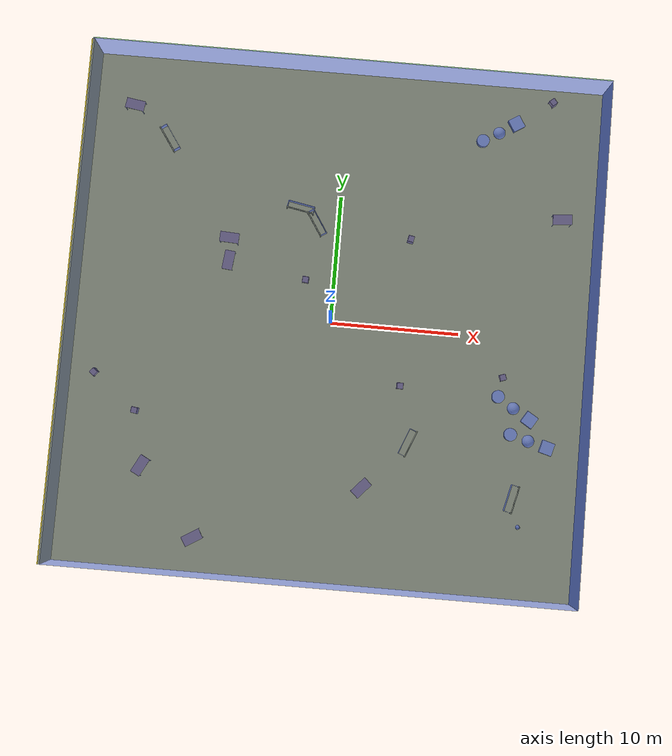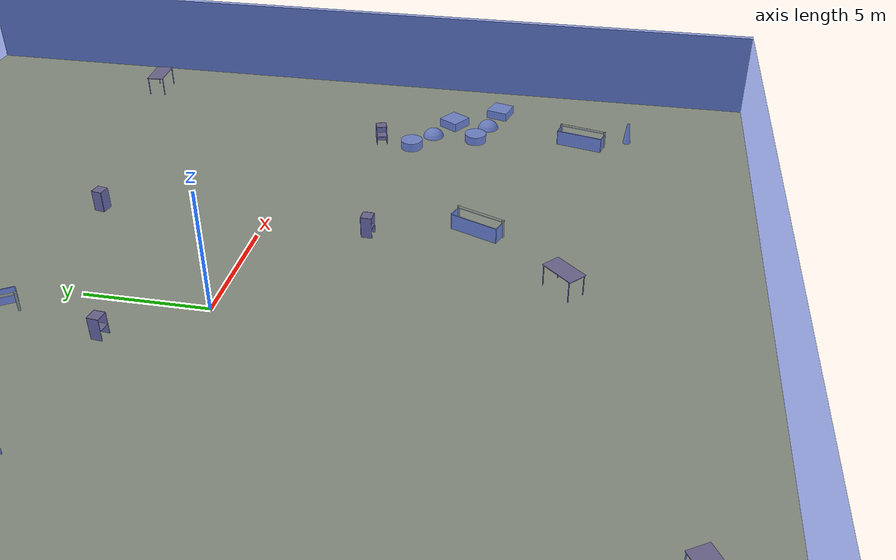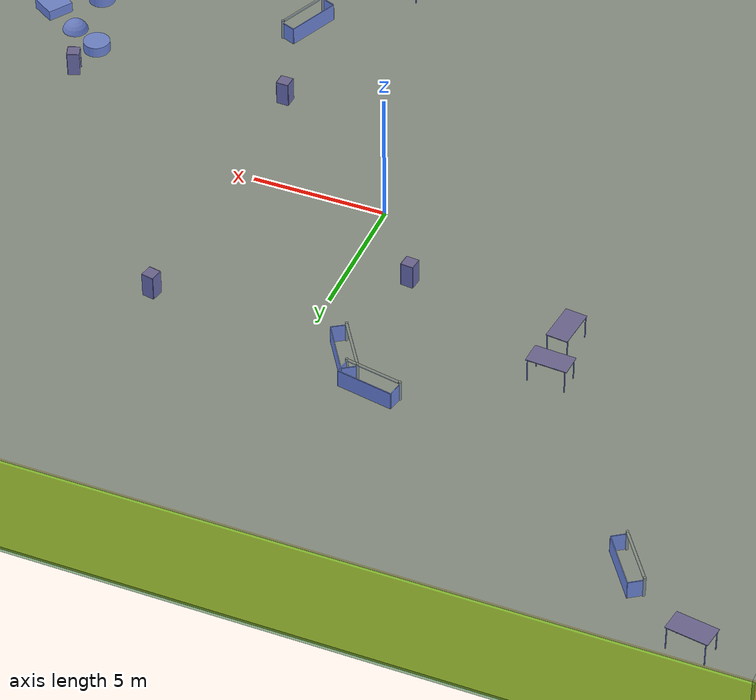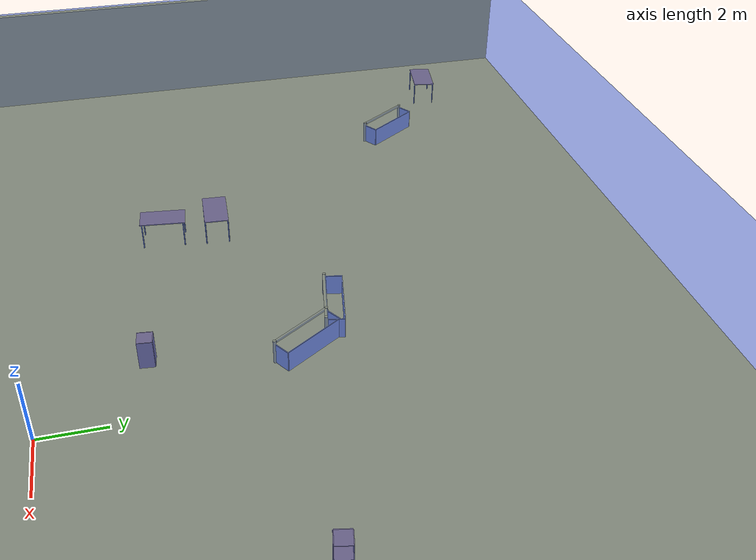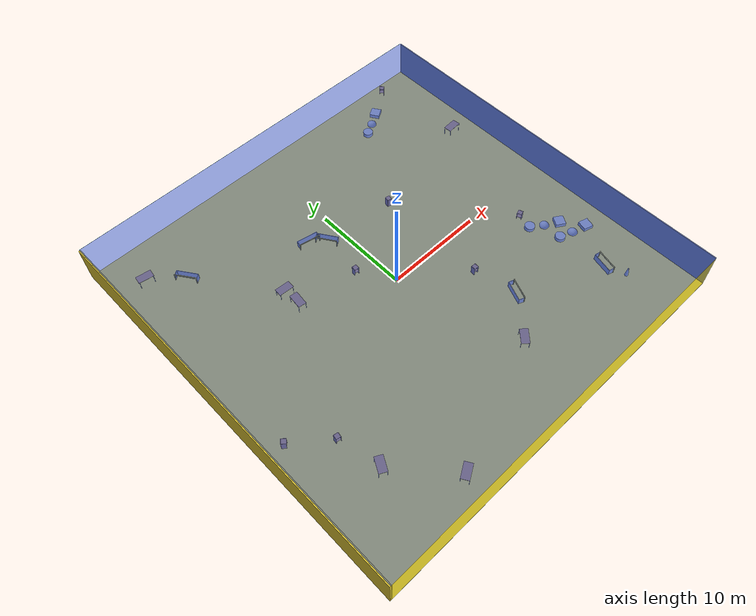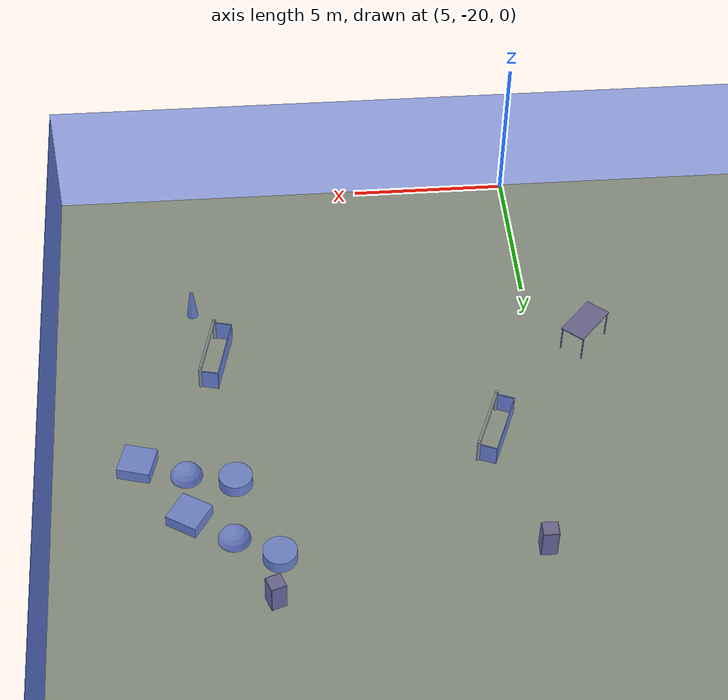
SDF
<sdf version="1.4">
 <world name="default">
  <physics type="ode">
   <max_step_size>0.001</max_step_size>
   <real_time_factor>1</real_time_factor>
   <real_time_update_rate>1000</real_time_update_rate>
   <gravity>0 0 -9.8</gravity>
  </physics>
  <scene><ambient>0.4 0.4 0.4 1</ambient><background>0.7 0.7 0.7 1</background><shadows>1</shadows></scene>
  <model name="Surrounding">
   <static>1</static>
   <link name="Ceiling">
    <collision name="Ceiling_Collision"><geometry><box><size>40 40 0.1</size></box></geometry></collision>
    <visual name="Ceiling_Visual">
     <geometry><box><size>40 40 0.1</size></box></geometry>
     <material>
      <script><uri>file://media/materials/scripts/gazebo.material</uri><name>Gazebo/BlueTransparent</name></script>
     </material>
    </visual>
    <pose>0 0 4.05 0 0 0</pose>
   </link>
   <link name="Wall_South">
    <collision name="Wall_South_Collision">
     <geometry><box><size>40 0 4</size></box></geometry>
     <pose>0 0 2 0 -0 0</pose>
    </collision>
    <visual name="Wall_South_Visual">
     <pose>0 0 2 0 -0 0</pose>
     <geometry><box><size>40 0 4</size></box></geometry>
     <material>
      <script>
       <uri>file://media/materials/scripts/gazebo.material</uri>
       <name>Gazebo/YellowTransparent</name>
      </script>
     </material>
    </visual>
    <velocity_decay><linear>0</linear><angular>0</angular></velocity_decay>
    <pose>0 -20 0 0 -0 0</pose>
   </link>
   <link name="Wall_East">
    <collision name="Wall_21_Collision">
     <geometry><box><size>40 0 4</size></box></geometry>
     <pose>0 0 2 0 -0 0</pose>
    </collision>
    <visual name="Wall_21_Visual">
     <pose>0 0 2 0 -0 0</pose>
     <geometry><box><size>40 0 4</size></box></geometry>
     <material>
      <script><uri>file://media/materials/scripts/gazebo.material</uri><name>Gazebo/GreyGradientSky</name></script>
     </material>
    </visual>
    <velocity_decay><linear>0</linear><angular>0</angular></velocity_decay>
    <pose>20 0 0 0 -0 1.5708</pose>
   </link>
   <link name="Wall_North">
    <collision name="Wall_22_Collision">
     <geometry><box><size>40 0.2 4</size></box></geometry>
     <pose>0 0 2 0 -0 0</pose>
    </collision>
    <visual name="Wall_22_Visual">
     <pose>0 0 2 0 -0 0</pose>
     <geometry><box><size>40 0.2 4</size></box></geometry>
     <material>
      <script><uri>file://media/materials/scripts/gazebo.material</uri><name>Gazebo/GreenTransparent</name></script>
     </material>
    </visual>
    <velocity_decay><linear>0</linear><angular>0</angular></velocity_decay>
    <pose>0 20 0 0 -0 0</pose>
   </link>
   <link name="Wall_West">
    <collision name="Wall_23_Collision">
     <geometry><box><size>40 0.2 4</size></box></geometry>
     <pose>0 0 2 0 -0 0</pose>
    </collision>
    <visual name="Wall_23_Visual">
     <pose>0 0 2 0 -0 0</pose>
     <geometry><box><size>40 0.2 4</size></box></geometry>
     <material>
      <script><uri>file://media/materials/scripts/gazebo.material</uri><name>Gazebo/ZincYellow</name></script>
     </material>
    </visual>
    <velocity_decay><linear>0</linear><angular>0</angular></velocity_decay>
    <pose>-20 0 0 0 0 -1.5708</pose>
   </link>
   <link name="Ground_link">
    <collision name="collision">
     <pose>0 0 .05 0 -0 0</pose>
     <geometry><box><size>40 40 0.1</size></box></geometry>
    </collision>
    <visual name="visual">
     <pose>0 0 .05 0 -0 0</pose>
     <geometry><box><size>40 40 0.1</size></box></geometry>
     <material>
      <script><uri>file://media/materials/scripts/gazebo.material</uri><name>Gazebo/ZincYellow</name></script>
     </material>
    </visual>
   </link>
   <static>1</static>
  </model>
  <spherical_coordinates>
   <surface_model>EARTH_WGS84</surface_model>
   <latitude_deg>0</latitude_deg>
   <longitude_deg>0</longitude_deg>
   <elevation>0</elevation>
   <heading_deg>0</heading_deg>
  </spherical_coordinates>
  <light name="lightball_0" type="diffuse">
   <diffuse>0.8 0.8 0.8 1</diffuse>
   <specular>0.2 0.2 0.2 1</specular>
   <attenuation>
    <range>100</range>
    <constant>0.7</constant>
    <linear>0.01</linear>
    <quadratic>0.001</quadratic>
   </attenuation>
   <direction>-0.5 0.1 -0.9</direction>
   <pose>-18.2187324055 -14.1883053259 2.19848019244 0 0 0</pose>
  </light>
  <light name="lightball_1" type="diffuse">
   <diffuse>0.8 0.8 0.8 1</diffuse>
   <specular>0.2 0.2 0.2 1</specular>
   <attenuation>
    <range>100</range>
    <constant>0.7</constant>
    <linear>0.01</linear>
    <quadratic>0.001</quadratic>
   </attenuation>
   <direction>-0.5 0.1 -0.9</direction>
   <pose>13.067052426 -15.6760987794 3.40087922286 0 0 0</pose>
  </light>
  <light name="lightball_2" type="diffuse">
   <diffuse>0.8 0.8 0.8 1</diffuse>
   <specular>0.2 0.2 0.2 1</specular>
   <attenuation>
    <range>100</range>
    <constant>0.7</constant>
    <linear>0.01</linear>
    <quadratic>0.001</quadratic>
   </attenuation>
   <direction>-0.5 0.1 -0.9</direction>
   <pose>2.49005244261 4.43291341487 3.54053064861 0 0 0</pose>
  </light>
  <light name="lightball_3" type="diffuse">
   <diffuse>0.8 0.8 0.8 1</diffuse>
   <specular>0.2 0.2 0.2 1</specular>
   <attenuation>
    <range>100</range>
    <constant>0.7</constant>
    <linear>0.01</linear>
    <quadratic>0.001</quadratic>
   </attenuation>
   <direction>-0.5 0.1 -0.9</direction>
   <pose>-8.56260880748 17.2722989481 1.78696364063 0 0 0</pose>
  </light>
  <light name="lightball_4" type="diffuse">
   <diffuse>0.8 0.8 0.8 1</diffuse>
   <specular>0.2 0.2 0.2 1</specular>
   <attenuation>
    <range>100</range>
    <constant>0.7</constant>
    <linear>0.01</linear>
    <quadratic>0.001</quadratic>
   </attenuation>
   <direction>-0.5 0.1 -0.9</direction>
   <pose>-12.0419447868 -10.3133031159 1.56931018195 0 0 0</pose>
  </light>
  <light name="lightball_5" type="diffuse">
   <diffuse>0.8 0.8 0.8 1</diffuse>
   <specular>0.2 0.2 0.2 1</specular>
   <attenuation>
    <range>100</range>
    <constant>0.7</constant>
    <linear>0.01</linear>
    <quadratic>0.001</quadratic>
   </attenuation>
   <direction>-0.5 0.1 -0.9</direction>
   <pose>-14.3829876978 -11.7012857538 2.06431650712 0 0 0</pose>
  </light>
  <light name="lightball_6" type="diffuse">
   <diffuse>0.8 0.8 0.8 1</diffuse>
   <specular>0.2 0.2 0.2 1</specular>
   <attenuation>
    <range>100</range>
    <constant>0.7</constant>
    <linear>0.01</linear>
    <quadratic>0.001</quadratic>
   </attenuation>
   <direction>-0.5 0.1 -0.9</direction>
   <pose>-11.6144348208 13.3204477751 2.90184375396 0 0 0</pose>
  </light>
  <light name="lightball_7" type="diffuse">
   <diffuse>0.8 0.8 0.8 1</diffuse>
   <specular>0.2 0.2 0.2 1</specular>
   <attenuation>
    <range>100</range>
    <constant>0.7</constant>
    <linear>0.01</linear>
    <quadratic>0.001</quadratic>
   </attenuation>
   <direction>-0.5 0.1 -0.9</direction>
   <pose>19.2653947365 -7.06757901209 3.7042257946 0 0 0</pose>
  </light>
  <light name="lightball_8" type="diffuse">
   <diffuse>0.8 0.8 0.8 1</diffuse>
   <specular>0.2 0.2 0.2 1</specular>
   <attenuation>
    <range>100</range>
    <constant>0.7</constant>
    <linear>0.01</linear>
    <quadratic>0.001</quadratic>
   </attenuation>
   <direction>-0.5 0.1 -0.9</direction>
   <pose>-10.2025489775 -19.147059657 0.80627026421 0 0 0</pose>
  </light>
  <light name="lightball_9" type="diffuse">
   <diffuse>0.8 0.8 0.8 1</diffuse>
   <specular>0.2 0.2 0.2 1</specular>
   <attenuation>
    <range>100</range>
    <constant>0.7</constant>
    <linear>0.01</linear>
    <quadratic>0.001</quadratic>
   </attenuation>
   <direction>-0.5 0.1 -0.9</direction>
   <pose>13.4095807646 -7.7702619226 2.8798574068 0 0 0</pose>
  </light>
  <include><uri>model://cabinet</uri><pose>-17.9387854763 -5.37940409232 0 0 0 2.43015473665</pose></include>
  <include><uri>model://table</uri><pose>-16.7956783695 15.8620118166 0 0 0 2.98482746125</pose></include>
  <include><uri>model://table</uri><pose>-13.6382720886 -12.228282124 0 0 0 1.080141874</pose></include>
  <include><uri>model://cabinet</uri><pose>-14.5348295386 -8.05842138313 0 0 0 1.42404062318</pose></include>
  <include>
   <uri>model://robocup_3Dsim_goal</uri>
   <pose>-14.0952253534 13.3829619844 0 0 0 0.602132973251</pose>
  </include>
  <include><uri>model://table</uri><pose>-9.16307615401 -17.3478945569 0 0 0 0.544363374708</pose></include>
  <include><uri>model://table</uri><pose>-8.34081035858 4.17976838813 0 0 0 1.46106382046</pose></include>
  <include><uri>model://table</uri><pose>-8.44026823942 5.95511805541 0 0 0 3.08376808436</pose></include>
  <include><uri>model://cabinet</uri><pose>-2.24749616452 3.16673959972 0 0 0 1.47479639916</pose></include>
  <include>
   <uri>model://robocup_3Dsim_goal</uri>
   <pose>-1.97451885518 7.61943293144 0 0 0 0.57543403769</pose>
  </include>
  <include>
   <uri>model://robocup_3Dsim_goal</uri>
   <pose>-3.1518021802 8.59774434127 0 0 0 1.3856248055</pose>
  </include>
  <include><uri>model://table</uri><pose>3.40670301735 -12.4971388777 0 0 0 0.83322048748</pose></include>
  <include>
   <uri>model://robocup_3Dsim_goal</uri>
   <pose>6.95027724583 -8.84667165848 0 0 0 2.75883654551</pose>
  </include>
  <include><uri>model://cabinet</uri><pose>5.75833313687 -4.44968690483 0 0 0 1.54332627266</pose></include>
  <include><uri>model://cabinet</uri><pose>5.7076098191 7.05165934137 0 0 0 2.94849275889</pose></include>
  <include><uri>model://cabinet</uri><pose>13.6196734537 -3.13261127521 0 0 0 0.348612816261</pose></include>
  <include>
   <uri>model://textured_shapes</uri>
   <pose>12.0463590928 16.2322481633 0 0 0 2.12638818712</pose>
  </include>
  <include>
   <uri>model://construction_cone</uri>
   <pose>15.689057444 -14.4965702473 0 0 0 0.91185090649</pose>
  </include>
  <include>
   <uri>model://robocup_3Dsim_goal</uri>
   <pose>15.2611361149 -12.4253416622 0 0 0 2.90324784018</pose>
  </include>
  <include>
   <uri>model://textured_shapes</uri>
   <pose>16.0271970145 -7.84907180488 0 0 0 1.30209447237</pose>
  </include>
  <include>
   <uri>model://textured_shapes</uri>
   <pose>14.7060419884 -5.40904839068 0 0 0 1.01257246821</pose>
  </include>
  <include><uri>model://cabinet</uri><pose>16.0187089378 18.8481755398 0 0 0 0.685444131139</pose></include>
  <include><uri>model://table</uri><pose>17.3643058953 9.55834864676 0 0 0 0.0673594812689</pose></include>
 </world>
</sdf>

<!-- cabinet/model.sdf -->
<sdf version="1.5">
  <model name="cabinet">
    <static>true</static>
    <link name="cabinet_bottom_plate">
      <inertial>
        <pose>0 0 -1 0 0 0</pose>
        <inertia>
          <ixx>2.050000</ixx>
          <ixy>0</ixy>
          <ixz>0</ixz>
          <iyy>2.050000</iyy>
          <iyz>0</iyz>
          <izz>2.050000</izz>
        </inertia>
        <mass>25.000000</mass>
      </inertial>
      <collision name="cabinet_bottom_plate_geom">
        <pose>0 0 0.010000 0 0 0</pose>
        <geometry>
          <box>
            <size>0.450000 0.450000 0.020000</size>
          </box>
        </geometry>
      </collision>
      <visual name="cabinet_bottom_plate_geom_visual">
        <pose>0 0 0.010000 0 0 0</pose>
        <geometry>
          <box>
            <size>0.450000 0.450000 0.020000</size>
          </box>
        </geometry>
        <material>
          <script>
            <uri>model://media/materials/scripts/gazebo.material</uri>
            <name>Gazebo/Wood</name>
          </script>
        </material>
      </visual>
      <collision name="cabinet_bottom_plate_geom_cabinet_back_plate">
        <pose>0.235000 0 0.510000 0 0 0</pose>
        <geometry>
          <box>
            <size>0.020000 0.450000 1.020000</size>
          </box>
        </geometry>
      </collision>
      <visual name="cabinet_bottom_plate_geom_cabinet_back_plate_visual">
        <pose>0.235000 0 0.510000 0 0 0</pose>
        <geometry>
          <box>
            <size>0.020000 0.450000 1.020000</size>
          </box>
        </geometry>
        <material>
          <script>
            <uri>model://media/materials/scripts/gazebo.material</uri>
            <name>Gazebo/Wood</name>
          </script>
        </material>
      </visual>
      <collision name="cabinet_bottom_plate_geom_cabinet_left_plate">
        <pose>0 0.235000 0.510000 0 0 0</pose>
        <geometry>
          <box>
            <size>0.450000 0.020000 1.020000</size>
          </box>
        </geometry>
      </collision>
      <visual name="cabinet_bottom_plate_geom_cabinet_left_plate_visual">
        <pose>0 0.235000 0.510000 0 0 0</pose>
        <geometry>
          <box>
            <size>0.450000 0.020000 1.020000</size>
          </box>
        </geometry>
        <material>
          <script>
            <uri>model://media/materials/scripts/gazebo.material</uri>
            <name>Gazebo/Wood</name>
          </script>
        </material>
      </visual>
      <collision name="cabinet_bottom_plate_geom_cabinet_middle_plate">
        <pose>0 0 0.510000 0 0 0</pose>
        <geometry>
          <box>
            <size>0.450000 0.450000 0.020000</size>
          </box>
        </geometry>
      </collision>
      <visual name="cabinet_bottom_plate_geom_cabinet_middle_plate_visual">
        <pose>0 0 0.510000 0 0 0</pose>
        <geometry>
          <box>
            <size>0.450000 0.450000 0.020000</size>
          </box>
        </geometry>
        <material>
          <script>
            <uri>model://media/materials/scripts/gazebo.material</uri>
            <name>Gazebo/Wood</name>
          </script>
        </material>
      </visual>
      <collision name="cabinet_bottom_plate_geom_cabinet_right_plate">
        <pose>0 -0.235000 0.510000 0 0 0</pose>
        <geometry>
          <box>
            <size>0.450000 0.020000 1.020000</size>
          </box>
        </geometry>
      </collision>
      <visual name="cabinet_bottom_plate_geom_cabinet_right_plate_visual">
        <pose>0 -0.235000 0.510000 0 0 0</pose>
        <geometry>
          <box>
            <size>0.450000 0.020000 1.020000</size>
          </box>
        </geometry>
        <material>
          <script>
            <uri>model://media/materials/scripts/gazebo.material</uri>
            <name>Gazebo/Wood</name>
          </script>
        </material>
      </visual>
      <collision name="cabinet_bottom_plate_geom_cabinet_top_plate">
        <pose>0 0 1.010000 0 0 0</pose>
        <geometry>
          <box>
            <size>0.450000 0.450000 0.020000</size>
          </box>
        </geometry>
      </collision>
      <visual name="cabinet_bottom_plate_geom_cabinet_top_plate_visual">
        <pose>0 0 1.010000 0 0 0</pose>
        <geometry>
          <box>
            <size>0.450000 0.450000 0.020000</size>
          </box>
        </geometry>
        <material>
          <script>
            <uri>model://media/materials/scripts/gazebo.material</uri>
            <name>Gazebo/Wood</name>
          </script>
        </material>
      </visual>
    </link>
  </model>
</sdf>

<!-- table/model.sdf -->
<sdf version="1.5">
  <model name="table">
    <static>true</static>
    <link name="link">
      <collision name="surface">
        <pose>0 0 1.0 0 0 0</pose>
        <geometry>
          <box>
            <size>1.5 0.8 0.03</size>
          </box>
        </geometry>
        <surface>
          <friction>
            <ode>
              <mu>0.6</mu>
              <mu2>0.6</mu2>
            </ode>
          </friction>
        </surface>
      </collision>
      <visual name="visual1">
        <pose>0 0 1.0 0 0 0</pose>
        <geometry>
          <box>
            <size>1.5 0.8 0.03</size>
          </box>
        </geometry>
        <material>
          <script>
            <uri>model://media/materials/scripts/gazebo.material</uri>
            <name>Gazebo/Wood</name>
          </script>
        </material>
      </visual>
      <collision name="front_left_leg">
        <pose>0.68 0.38 0.5 0 0 0</pose>
        <geometry>
          <cylinder>
            <radius>0.02</radius>
            <length>1.0</length>
          </cylinder>
        </geometry>
      </collision>
      <visual name="front_left_leg">
        <pose>0.68 0.38 0.5 0 0 0</pose>
        <geometry>
          <cylinder>
            <radius>0.02</radius>
            <length>1.0</length>
          </cylinder>
        </geometry>
        <material>
          <script>
            <uri>model://media/materials/scripts/gazebo.material</uri>
            <name>Gazebo/Grey</name>
          </script>
        </material>
      </visual>
      <collision name="front_right_leg">
        <pose>0.68 -0.38 0.5 0 0 0</pose>
        <geometry>
          <cylinder>
            <radius>0.02</radius>
            <length>1.0</length>
          </cylinder>
        </geometry>
      </collision>
      <visual name="front_right_leg">
        <pose>0.68 -0.38 0.5 0 0 0</pose>
        <geometry>
          <cylinder>
            <radius>0.02</radius>
            <length>1.0</length>
          </cylinder>
        </geometry>
        <material>
          <script>
            <uri>model://media/materials/scripts/gazebo.material</uri>
            <name>Gazebo/Grey</name>
          </script>
        </material>
      </visual>
      <collision name="back_right_leg">
        <pose>-0.68 -0.38 0.5 0 0 0</pose>
        <geometry>
          <cylinder>
            <radius>0.02</radius>
            <length>1.0</length>
          </cylinder>
        </geometry>
      </collision>
      <visual name="back_right_leg">
        <pose>-0.68 -0.38 0.5 0 0 0</pose>
        <geometry>
          <cylinder>
            <radius>0.02</radius>
            <length>1.0</length>
          </cylinder>
        </geometry>
        <material>
          <script>
            <uri>model://media/materials/scripts/gazebo.material</uri>
            <name>Gazebo/Grey</name>
          </script>
        </material>
      </visual>
      <collision name="back_left_leg">
        <pose>-0.68 0.38 0.5 0 0 0</pose>
        <geometry>
          <cylinder>
            <radius>0.02</radius>
            <length>1.0</length>
          </cylinder>
        </geometry>
      </collision>
      <visual name="back_left_leg">
        <pose>-0.68 0.38 0.5 0 0 0</pose>
        <geometry>
          <cylinder>
            <radius>0.02</radius>
            <length>1.0</length>
          </cylinder>
        </geometry>
        <material>
          <script>
            <uri>model://media/materials/scripts/gazebo.material</uri>
            <name>Gazebo/Grey</name>
          </script>
        </material>
      </visual>
    </link>
  </model>
</sdf>

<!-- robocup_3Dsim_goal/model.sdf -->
<sdf version="1.5">
  <model name="robocup_3d_goal">
    <static>true</static>
    <link name="left_post">
      <pose>0 1.05 0.45 0 0 0</pose>
      <collision name="collision">
        <geometry>
          <cylinder>
            <radius>0.05</radius>
            <length>0.9</length>
          </cylinder>
        </geometry>
      </collision>
      <visual name="visual">
        <geometry>
          <cylinder>
            <radius>0.05</radius>
            <length>0.9</length>
          </cylinder>
        </geometry>
        <material>
          <script>
            <uri>file://media/materials/scripts/gazebo.material</uri>
            <name>Gazebo/ZincYellow</name>
          </script>
        </material>
      </visual>
    </link>
    <link name="left_support_horiz_lower">
      <pose>0.30 1.05 0.01 0 0 0</pose>
      <collision name="collision">
        <geometry>
          <box>
            <size>0.50 0.02 0.02</size>
          </box>
        </geometry>
      </collision>
      <visual name="visual">
        <geometry>
          <box>
            <size>0.50 0.02 0.02</size>
          </box>
        </geometry>
        <material>
          <script>
            <uri>file://media/materials/scripts/gazebo.material</uri>
            <name>Gazebo/White</name>
          </script>
        </material>
      </visual>
    </link>
    <link name="left_support_horiz_upper">
      <pose>0.30 1.05 0.79 0 0 0</pose>
      <collision name="collision">
        <geometry>
          <box>
            <size>0.50 0.02 0.02</size>
          </box>
        </geometry>
      </collision>
      <visual name="visual">
        <geometry>
          <box>
            <size>0.50 0.02 0.02</size>
          </box>
        </geometry>
        <material>
          <script>
            <uri>file://media/materials/scripts/gazebo.material</uri>
            <name>Gazebo/White</name>
          </script>
        </material>
      </visual>
    </link>
    <link name="left_support_vertical">
      <pose>0.56 1.05 0.4 0 1.5708 0</pose>
      <collision name="collision">
        <geometry>
          <box>
            <size>0.80 0.02 0.02</size>
          </box>
        </geometry>
      </collision>
      <visual name="visual">
        <geometry>
          <box>
            <size>0.80 0.02 0.02</size>
          </box>
        </geometry>
        <material>
          <script>
            <uri>file://media/materials/scripts/gazebo.material</uri>
            <name>Gazebo/White</name>
          </script>
        </material>
      </visual>
    </link>
    <link name="right_support_horiz_lower">
      <pose>0.30 -1.05 0.01 0 0 0</pose>
      <collision name="collision">
        <geometry>
          <box>
            <size>0.50 0.02 0.02</size>
          </box>
        </geometry>
      </collision>
      <visual name="visual">
        <geometry>
          <box>
            <size>0.50 0.02 0.02</size>
          </box>
        </geometry>
        <material>
          <script>
            <uri>file://media/materials/scripts/gazebo.material</uri>
            <name>Gazebo/White</name>
          </script>
        </material>
      </visual>
    </link>
    <link name="right_support_horiz_upper">
      <pose>0.30 -1.05 0.79 0 0 0</pose>
      <collision name="collision">
        <geometry>
          <box>
            <size>0.50 0.02 0.02</size>
          </box>
        </geometry>
      </collision>
      <visual name="visual">
        <geometry>
          <box>
            <size>0.50 0.02 0.02</size>
          </box>
        </geometry>
        <material>
          <script>
            <uri>file://media/materials/scripts/gazebo.material</uri>
            <name>Gazebo/White</name>
          </script>
        </material>
      </visual>
    </link>
    <link name="right_support_vertical">
      <pose>0.56 -1.05 0.4 0 1.5708 0</pose>
      <collision name="collision">
        <geometry>
          <box>
            <size>0.80 0.02 0.02</size>
          </box>
        </geometry>
      </collision>
      <visual name="visual">
        <geometry>
          <box>
            <size>0.80 0.02 0.02</size>
          </box>
        </geometry>
        <material>
          <script>
            <uri>file://media/materials/scripts/gazebo.material</uri>
            <name>Gazebo/White</name>
          </script>
        </material>
      </visual>
    </link>
    <link name="center_support_horiz_lower">
      <pose>0.56 0 0.01 0 1.5708 0</pose>
      <collision name="collision">
        <geometry>
          <box>
            <size>0.02 2.08 0.02</size>
          </box>
        </geometry>
      </collision>
      <visual name="visual">
        <geometry>
          <box>
            <size>0.02 2.08 0.02</size>
          </box>
        </geometry>
        <material>
          <script>
            <uri>file://media/materials/scripts/gazebo.material</uri>
            <name>Gazebo/White</name>
          </script>
        </material>
      </visual>
    </link>
    <link name="center_support_horiz_upper">
      <pose>0.56 0 0.79 0 1.5708 0</pose>
      <collision name="collision">
        <geometry>
          <box>
            <size>0.02 2.08 0.02</size>
          </box>
        </geometry>
      </collision>
      <visual name="visual">
        <geometry>
          <box>
            <size>0.02 2.08 0.02</size>
          </box>
        </geometry>
        <material>
          <script>
            <uri>file://media/materials/scripts/gazebo.material</uri>
            <name>Gazebo/White</name>
          </script>
        </material>
      </visual>
    </link>
    <link name="right_post">
      <pose>0 -1.05 0.45 0 0 0</pose>
      <collision name="collision">
        <geometry>
          <cylinder>
            <radius>0.05</radius>
            <length>0.9</length>
          </cylinder>
        </geometry>
      </collision>
      <visual name="visual">
        <geometry>
          <cylinder>
            <radius>0.05</radius>
            <length>0.9</length>
          </cylinder>
        </geometry>
        <material>
          <script>
            <uri>file://media/materials/scripts/gazebo.material</uri>
            <name>Gazebo/ZincYellow</name>
          </script>
        </material>
      </visual>
    </link>
    <link name="crossbar">
      <pose>0 0 0.85 1.57 1.57 0</pose>
      <collision name="collision">
        <geometry>
          <cylinder>
            <radius>0.05</radius>
            <length>2.0</length>
          </cylinder>
        </geometry>
      </collision>
      <visual name="visual">
        <geometry>
          <cylinder>
            <radius>0.05</radius>
            <length>2.0</length>
          </cylinder>
        </geometry>
        <material>
          <script>
            <uri>file://media/materials/scripts/gazebo.material</uri>
            <name>Gazebo/ZincYellow</name>
          </script>
        </material>
      </visual>
    </link>
    <link name="center_net">
      <pose>0.56 0 0.40 0 0 0</pose>
      <collision name="collision">
        <geometry>
          <box>
            <size>0.01 2.1 0.80</size>
          </box>
        </geometry>
      </collision>
      <visual name="visual">
        <geometry>
          <box>
            <size>0.01 2.1 0.80</size>
          </box>
        </geometry>
        <material>
          <script>
            <uri>model://../model_source/models/robocup09_spl_field/materials/scripts/</uri>
            <uri>model://../model_source/models/robocup09_spl_field/materials/textures/</uri>
            <name>RoboCup/Net</name>
          </script>
        </material>
      </visual>
    </link>
    <link name="left_net">
      <pose>0.30 1.05 0.40 0 0 0</pose>
      <collision name="collision">
        <geometry>
          <box>
            <size>0.50 0.01 0.76</size>
          </box>
        </geometry>
      </collision>
      <visual name="visual">
        <geometry>
          <box>
            <size>0.50 0.01 0.76</size>
          </box>
        </geometry>
        <material>
          <script>
            <uri>model://../model_source/models/robocup09_spl_field/materials/scripts/</uri>
            <uri>model://../model_source/models/robocup09_spl_field/materials/textures/</uri>
            <name>RoboCup/Net</name>
          </script>
        </material>
      </visual>
    </link>
    <link name="right_net">
      <pose>0.30 -1.05 0.40 0 0 0</pose>
      <collision name="collision">
        <geometry>
          <box>
            <size>0.50 0.01 0.76</size>
          </box>
        </geometry>
      </collision>
      <visual name="visual">
        <geometry>
          <box>
            <size>0.50 0.01 0.76</size>
          </box>
        </geometry>
        <material>
          <script>
            <uri>model://../model_source/models/robocup09_spl_field/materials/scripts/</uri>
            <uri>model://../model_source/models/robocup09_spl_field/materials/textures/</uri>
            <name>RoboCup/Net</name>
          </script>
        </material>
      </visual>
    </link>
  </model>
</sdf>

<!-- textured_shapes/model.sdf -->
<sdf version="1.6">
  <model name="textured_shapes">
    <pose>0 0 0.5 0 0 0</pose>
    <link name="box">
      <pose>0 -1.5 0 0 0 0</pose>
      <collision name="collision">
        <geometry>
          <box>
            <size>1 1 1</size>
          </box>
        </geometry>
      </collision>
      <visual name="visual">
        <geometry>
          <box>
            <size>1 1 1</size>
          </box>
        </geometry>
        <material>
          <script>
            <uri>model://../model_source/models/textured_shapes/materials/scripts</uri>
            <uri>model://../model_source/models/textured_shapes/materials/textures</uri>
            <name>TexturedShape/Squares</name>
          </script>
        </material>
      </visual>
    </link>
    <link name="sphere">
      <collision name="collision">
        <geometry>
          <sphere>
            <radius>0.5</radius>
          </sphere>
        </geometry>
      </collision>
      <visual name="visual">
        <geometry>
          <sphere>
            <radius>0.5</radius>
          </sphere>
        </geometry>
        <material>
          <script>
            <uri>model://../model_source/models/textured_shapes/materials/scripts</uri>
            <uri>model://../model_source/models/textured_shapes/materials/textures</uri>
            <name>TexturedShape/Squares</name>
          </script>
        </material>
      </visual>
    </link>
    <link name="cylinder">
      <pose>0 1.5 0 0 0 0</pose>
      <collision name="collision">
        <geometry>
          <cylinder>
            <radius>0.5</radius>
            <length>1</length>
          </cylinder>
        </geometry>
      </collision>
      <visual name="visual">
        <geometry>
          <cylinder>
            <radius>0.5</radius>
            <length>1</length>
          </cylinder>
        </geometry>
        <material>
          <script>
            <uri>model://../model_source/models/textured_shapes/materials/scripts</uri>
            <uri>model://../model_source/models/textured_shapes/materials/textures</uri>
            <name>TexturedShape/Squares</name>
          </script>
        </material>
      </visual>
    </link>
  </model>
</sdf>

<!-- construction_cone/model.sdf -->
<sdf version="1.5">
  <model name="Construction Cone">
    <link name="link">
      <collision name="collision">
        <geometry>
          <mesh>
            <scale>10 10 10</scale>
            <uri>file://isr-testbed/construction_cone/meshes/construction_cone.dae</uri>
          </mesh>
        </geometry>
      </collision>
      <visual name="visual">
        <geometry>
          <mesh>
            <scale>10 10 10</scale>
            <uri>file://isr-testbed/construction_cone/meshes/construction_cone.dae</uri>
          </mesh>
        </geometry>
      </visual>
    </link>
  </model>
</sdf>
